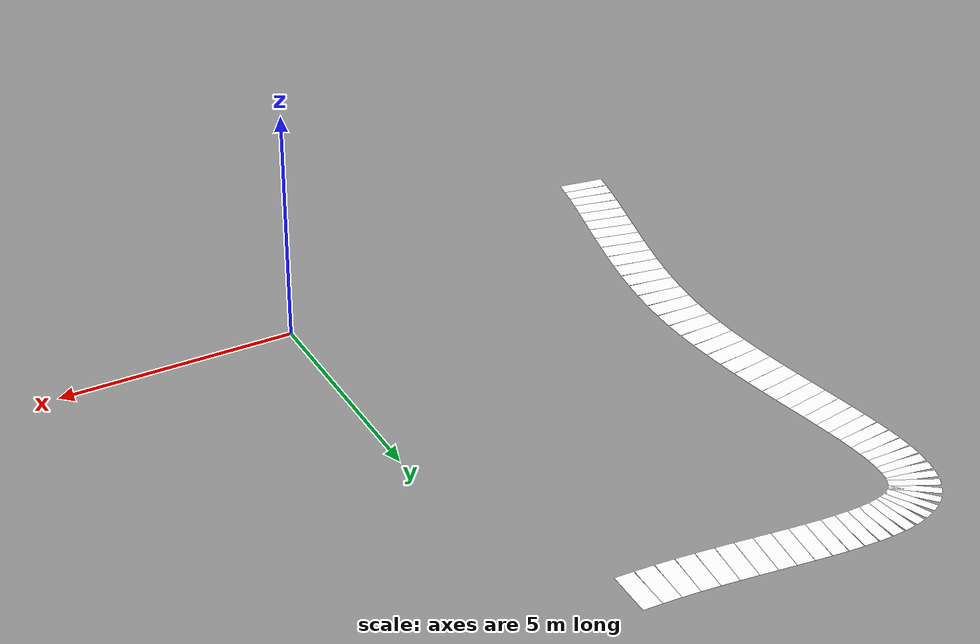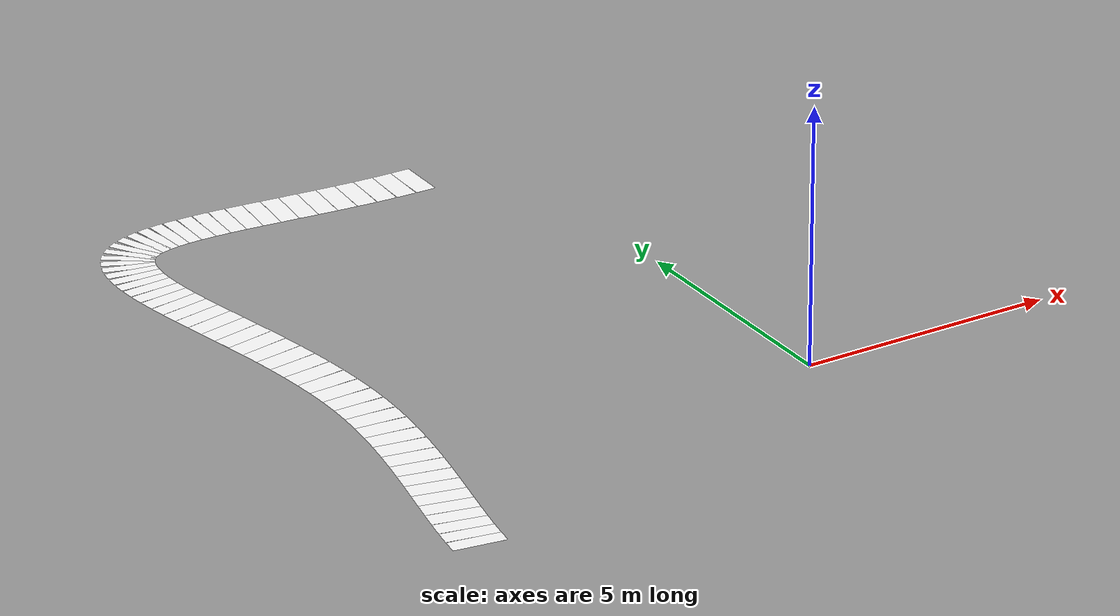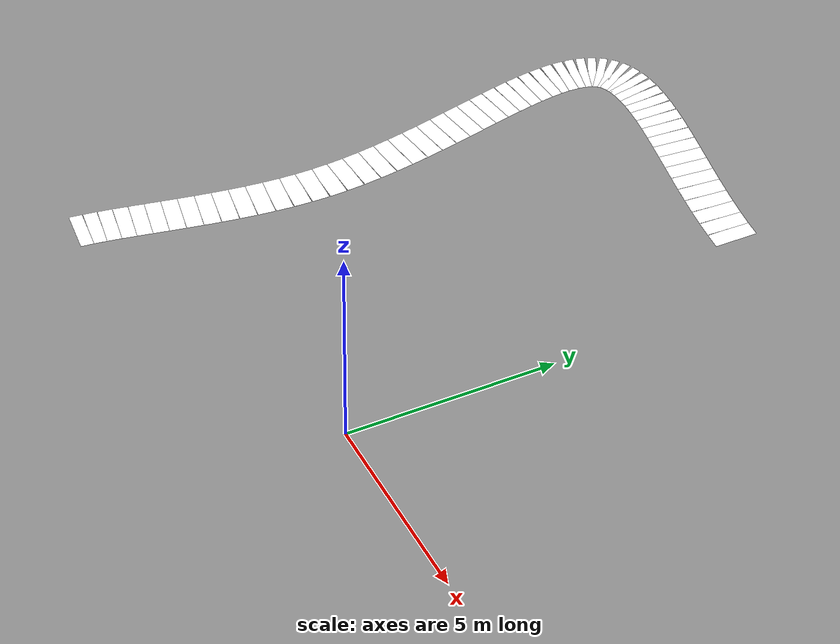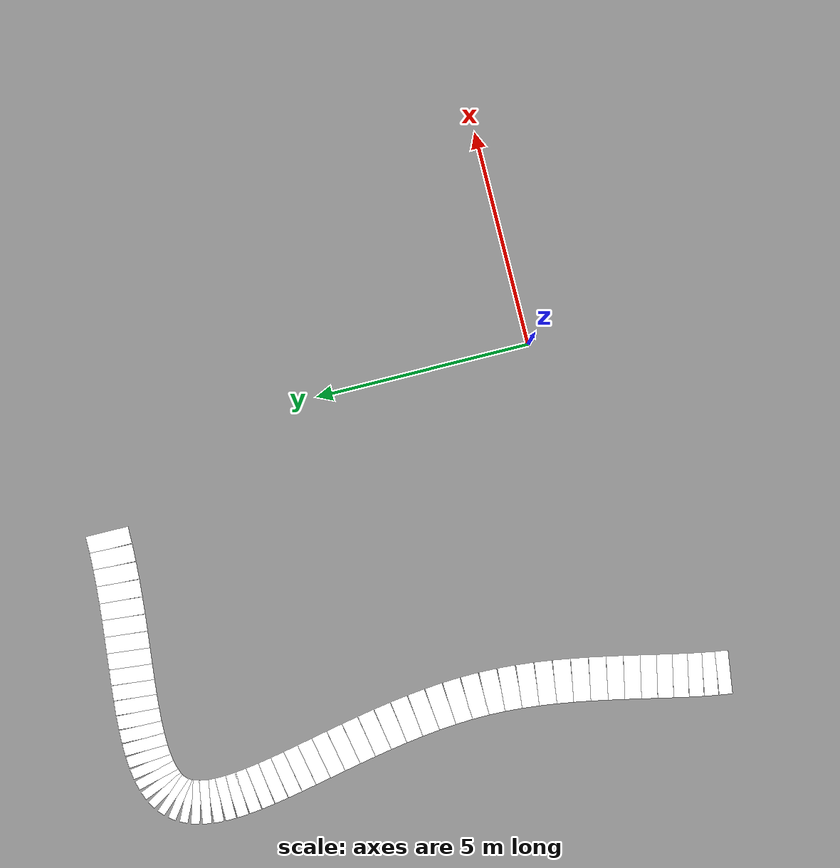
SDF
<sdf version="1.6">
 <model name="road_model">
  <model name="road_section_95">
   <static>1</static>
   <link name="road_link">
    <visual name="road_visual">
     <geometry><box><size>0.306032 1 0.0001</size></box></geometry>
     <material>
      <ambient>0.8 0.8 0.8 1</ambient>
      <diffuse>1 1 1 1</diffuse>
      <specular>0 0 0 1</specular>
      <pbr>
       <metal>
        <albedo_map>model://road_material/materials/textures/road_texture.jpg</albedo_map>
        <metalness>0</metalness>
        <roughness>0.8</roughness>
       </metal>
      </pbr>
     </material>
    </visual>
    <collision name="road_collision"><geometry><box><size>0.306032 1 0.0001</size></box></geometry></collision>
   </link>
   <pose>-8.37114 -2.49006 0 0 -0 1.42886</pose>
  </model>
  <model name="road_section_96">
   <static>1</static>
   <link name="road_link">
    <visual name="road_visual">
     <geometry><box><size>0.321907 1 0.0001</size></box></geometry>
     <material>
      <ambient>0.8 0.8 0.8 1</ambient>
      <diffuse>1 1 1 1</diffuse>
      <specular>0 0 0 1</specular>
      <pbr>
       <metal>
        <albedo_map>model://road_material/materials/textures/road_texture.jpg</albedo_map>
        <metalness>0</metalness>
        <roughness>0.8</roughness>
       </metal>
      </pbr>
     </material>
    </visual>
    <collision name="road_collision"><geometry><box><size>0.321907 1 0.0001</size></box></geometry></collision>
   </link>
   <pose>-8.32211 -2.17998 0 0 -0 1.39988</pose>
  </model>
  <model name="road_section_97">
   <static>1</static>
   <link name="road_link">
    <visual name="road_visual">
     <geometry><box><size>0.336643 1 0.0001</size></box></geometry>
     <material>
      <ambient>0.8 0.8 0.8 1</ambient>
      <diffuse>1 1 1 1</diffuse>
      <specular>0 0 0 1</specular>
      <pbr>
       <metal>
        <albedo_map>model://road_material/materials/textures/road_texture.jpg</albedo_map>
        <metalness>0</metalness>
        <roughness>0.8</roughness>
       </metal>
      </pbr>
     </material>
    </visual>
    <collision name="road_collision"><geometry><box><size>0.336643 1 0.0001</size></box></geometry></collision>
   </link>
   <pose>-8.26269 -1.85613 0 0 -0 1.37921</pose>
  </model>
  <model name="road_section_98">
   <static>1</static>
   <link name="road_link">
    <visual name="road_visual">
     <geometry><box><size>0.3501 1 0.0001</size></box></geometry>
     <material>
      <ambient>0.8 0.8 0.8 1</ambient>
      <diffuse>1 1 1 1</diffuse>
      <specular>0 0 0 1</specular>
      <pbr>
       <metal>
        <albedo_map>model://road_material/materials/textures/road_texture.jpg</albedo_map>
        <metalness>0</metalness>
        <roughness>0.8</roughness>
       </metal>
      </pbr>
     </material>
    </visual>
    <collision name="road_collision"><geometry><box><size>0.3501 1 0.0001</size></box></geometry></collision>
   </link>
   <pose>-8.19496 -1.51951 0 0 -0 1.36557</pose>
  </model>
  <model name="road_section_99">
   <static>1</static>
   <link name="road_link">
    <visual name="road_visual">
     <geometry><box><size>0.362194 1 0.0001</size></box></geometry>
     <material>
      <ambient>0.8 0.8 0.8 1</ambient>
      <diffuse>1 1 1 1</diffuse>
      <specular>0 0 0 1</specular>
      <pbr>
       <metal>
        <albedo_map>model://road_material/materials/textures/road_texture.jpg</albedo_map>
        <metalness>0</metalness>
        <roughness>0.8</roughness>
       </metal>
      </pbr>
     </material>
    </visual>
    <collision name="road_collision"><geometry><box><size>0.362194 1 0.0001</size></box></geometry></collision>
   </link>
   <pose>-8.12105 -1.17112 0 0 -0 1.35803</pose>
  </model>
  <model name="road_section_100">
   <static>1</static>
   <link name="road_link">
    <visual name="road_visual">
     <geometry><box><size>0.372879 1 0.0001</size></box></geometry>
     <material>
      <ambient>0.8 0.8 0.8 1</ambient>
      <diffuse>1 1 1 1</diffuse>
      <specular>0 0 0 1</specular>
      <pbr>
       <metal>
        <albedo_map>model://road_material/materials/textures/road_texture.jpg</albedo_map>
        <metalness>0</metalness>
        <roughness>0.8</roughness>
       </metal>
      </pbr>
     </material>
    </visual>
    <collision name="road_collision"><geometry><box><size>0.372879 1 0.0001</size></box></geometry></collision>
   </link>
   <pose>-8.04305 -0.811953 0 0 -0 1.35592</pose>
  </model>
  <model name="road_section_101">
   <static>1</static>
   <link name="road_link">
    <visual name="road_visual">
     <geometry><box><size>0.382144 1 0.0001</size></box></geometry>
     <material>
      <ambient>0.8 0.8 0.8 1</ambient>
      <diffuse>1 1 1 1</diffuse>
      <specular>0 0 0 1</specular>
      <pbr>
       <metal>
        <albedo_map>model://road_material/materials/textures/road_texture.jpg</albedo_map>
        <metalness>0</metalness>
        <roughness>0.8</roughness>
       </metal>
      </pbr>
     </material>
    </visual>
    <collision name="road_collision"><geometry><box><size>0.382144 1 0.0001</size></box></geometry></collision>
   </link>
   <pose>-7.96309 -0.443008 0 0 -0 1.35875</pose>
  </model>
  <model name="road_section_102">
   <static>1</static>
   <link name="road_link">
    <visual name="road_visual">
     <geometry><box><size>0.390003 1 0.0001</size></box></geometry>
     <material>
      <ambient>0.8 0.8 0.8 1</ambient>
      <diffuse>1 1 1 1</diffuse>
      <specular>0 0 0 1</specular>
      <pbr>
       <metal>
        <albedo_map>model://road_material/materials/textures/road_texture.jpg</albedo_map>
        <metalness>0</metalness>
        <roughness>0.8</roughness>
       </metal>
      </pbr>
     </material>
    </visual>
    <collision name="road_collision"><geometry><box><size>0.390003 1 0.0001</size></box></geometry></collision>
   </link>
   <pose>-7.88326 -0.065281 0 0 -0 1.36621</pose>
  </model>
  <model name="road_section_103">
   <static>1</static>
   <link name="road_link">
    <visual name="road_visual">
     <geometry><box><size>0.396496 1 0.0001</size></box></geometry>
     <material>
      <ambient>0.8 0.8 0.8 1</ambient>
      <diffuse>1 1 1 1</diffuse>
      <specular>0 0 0 1</specular>
      <pbr>
       <metal>
        <albedo_map>model://road_material/materials/textures/road_texture.jpg</albedo_map>
        <metalness>0</metalness>
        <roughness>0.8</roughness>
       </metal>
      </pbr>
     </material>
    </visual>
    <collision name="road_collision"><geometry><box><size>0.396496 1 0.0001</size></box></geometry></collision>
   </link>
   <pose>-7.80567 0.320233 0 0 -0 1.3781</pose>
  </model>
  <model name="road_section_104">
   <static>1</static>
   <link name="road_link">
    <visual name="road_visual">
     <geometry><box><size>0.401688 1 0.0001</size></box></geometry>
     <material>
      <ambient>0.8 0.8 0.8 1</ambient>
      <diffuse>1 1 1 1</diffuse>
      <specular>0 0 0 1</specular>
      <pbr>
       <metal>
        <albedo_map>model://road_material/materials/textures/road_texture.jpg</albedo_map>
        <metalness>0</metalness>
        <roughness>0.8</roughness>
       </metal>
      </pbr>
     </material>
    </visual>
    <collision name="road_collision"><geometry><box><size>0.401688 1 0.0001</size></box></geometry></collision>
   </link>
   <pose>-7.73245 0.712536 0 0 -0 1.39432</pose>
  </model>
  <model name="road_section_105">
   <static>1</static>
   <link name="road_link">
    <visual name="road_visual">
     <geometry><box><size>0.405667 1 0.0001</size></box></geometry>
     <material>
      <ambient>0.8 0.8 0.8 1</ambient>
      <diffuse>1 1 1 1</diffuse>
      <specular>0 0 0 1</specular>
      <pbr>
       <metal>
        <albedo_map>model://road_material/materials/textures/road_texture.jpg</albedo_map>
        <metalness>0</metalness>
        <roughness>0.8</roughness>
       </metal>
      </pbr>
     </material>
    </visual>
    <collision name="road_collision"><geometry><box><size>0.405667 1 0.0001</size></box></geometry></collision>
   </link>
   <pose>-7.66568 1.11063 0 0 -0 1.41485</pose>
  </model>
  <model name="road_section_106">
   <static>1</static>
   <link name="road_link">
    <visual name="road_visual">
     <geometry><box><size>0.408546 1 0.0001</size></box></geometry>
     <material>
      <ambient>0.8 0.8 0.8 1</ambient>
      <diffuse>1 1 1 1</diffuse>
      <specular>0 0 0 1</specular>
      <pbr>
       <metal>
        <albedo_map>model://road_material/materials/textures/road_texture.jpg</albedo_map>
        <metalness>0</metalness>
        <roughness>0.8</roughness>
       </metal>
      </pbr>
     </material>
    </visual>
    <collision name="road_collision"><geometry><box><size>0.408546 1 0.0001</size></box></geometry></collision>
   </link>
   <pose>-7.60749 1.51353 0 0 -0 1.43977</pose>
  </model>
  <model name="road_section_107">
   <static>1</static>
   <link name="road_link">
    <visual name="road_visual">
     <geometry><box><size>0.410464 1 0.0001</size></box></geometry>
     <material>
      <ambient>0.8 0.8 0.8 1</ambient>
      <diffuse>1 1 1 1</diffuse>
      <specular>0 0 0 1</specular>
      <pbr>
       <metal>
        <albedo_map>model://road_material/materials/textures/road_texture.jpg</albedo_map>
        <metalness>0</metalness>
        <roughness>0.8</roughness>
       </metal>
      </pbr>
     </material>
    </visual>
    <collision name="road_collision"><geometry><box><size>0.410464 1 0.0001</size></box></geometry></collision>
   </link>
   <pose>-7.55998 1.92022 0 0 -0 1.46917</pose>
  </model>
  <model name="road_section_108">
   <static>1</static>
   <link name="road_link">
    <visual name="road_visual">
     <geometry><box><size>0.411592 1 0.0001</size></box></geometry>
     <material>
      <ambient>0.8 0.8 0.8 1</ambient>
      <diffuse>1 1 1 1</diffuse>
      <specular>0 0 0 1</specular>
      <pbr>
       <metal>
        <albedo_map>model://road_material/materials/textures/road_texture.jpg</albedo_map>
        <metalness>0</metalness>
        <roughness>0.8</roughness>
       </metal>
      </pbr>
     </material>
    </visual>
    <collision name="road_collision"><geometry><box><size>0.411592 1 0.0001</size></box></geometry></collision>
   </link>
   <pose>-7.52526 2.32972 0 0 -0 1.50321</pose>
  </model>
  <model name="road_section_109">
   <static>1</static>
   <link name="road_link">
    <visual name="road_visual">
     <geometry><box><size>0.412133 1 0.0001</size></box></geometry>
     <material>
      <ambient>0.8 0.8 0.8 1</ambient>
      <diffuse>1 1 1 1</diffuse>
      <specular>0 0 0 1</specular>
      <pbr>
       <metal>
        <albedo_map>model://road_material/materials/textures/road_texture.jpg</albedo_map>
        <metalness>0</metalness>
        <roughness>0.8</roughness>
       </metal>
      </pbr>
     </material>
    </visual>
    <collision name="road_collision"><geometry><box><size>0.412133 1 0.0001</size></box></geometry></collision>
   </link>
   <pose>-7.50544 2.74103 0 0 -0 1.54205</pose>
  </model>
  <model name="road_section_110">
   <static>1</static>
   <link name="road_link">
    <visual name="road_visual">
     <geometry><box><size>0.412291 1 0.0001</size></box></geometry>
     <material>
      <ambient>0.8 0.8 0.8 1</ambient>
      <diffuse>1 1 1 1</diffuse>
      <specular>0 0 0 1</specular>
      <pbr>
       <metal>
        <albedo_map>model://road_material/materials/textures/road_texture.jpg</albedo_map>
        <metalness>0</metalness>
        <roughness>0.8</roughness>
       </metal>
      </pbr>
     </material>
    </visual>
    <collision name="road_collision"><geometry><box><size>0.412291 1 0.0001</size></box></geometry></collision>
   </link>
   <pose>-7.50216 3.15314 0 0 -0 1.5836</pose>
  </model>
  <model name="road_section_111">
   <static>1</static>
   <link name="road_link">
    <visual name="road_visual">
     <geometry><box><size>0.412015 1 0.0001</size></box></geometry>
     <material>
      <ambient>0.8 0.8 0.8 1</ambient>
      <diffuse>1 1 1 1</diffuse>
      <specular>0 0 0 1</specular>
      <pbr>
       <metal>
        <albedo_map>model://road_material/materials/textures/road_texture.jpg</albedo_map>
        <metalness>0</metalness>
        <roughness>0.8</roughness>
       </metal>
      </pbr>
     </material>
    </visual>
    <collision name="road_collision"><geometry><box><size>0.412015 1 0.0001</size></box></geometry></collision>
   </link>
   <pose>-7.51525 3.56501 0 0 -0 1.62155</pose>
  </model>
  <model name="road_section_112">
   <static>1</static>
   <link name="road_link">
    <visual name="road_visual">
     <geometry><box><size>0.411089 1 0.0001</size></box></geometry>
     <material>
      <ambient>0.8 0.8 0.8 1</ambient>
      <diffuse>1 1 1 1</diffuse>
      <specular>0 0 0 1</specular>
      <pbr>
       <metal>
        <albedo_map>model://road_material/materials/textures/road_texture.jpg</albedo_map>
        <metalness>0</metalness>
        <roughness>0.8</roughness>
       </metal>
      </pbr>
     </material>
    </visual>
    <collision name="road_collision"><geometry><box><size>0.411089 1 0.0001</size></box></geometry></collision>
   </link>
   <pose>-7.54298 3.97557 0 0 -0 1.65494</pose>
  </model>
  <model name="road_section_113">
   <static>1</static>
   <link name="road_link">
    <visual name="road_visual">
     <geometry><box><size>0.409325 1 0.0001</size></box></geometry>
     <material>
      <ambient>0.8 0.8 0.8 1</ambient>
      <diffuse>1 1 1 1</diffuse>
      <specular>0 0 0 1</specular>
      <pbr>
       <metal>
        <albedo_map>model://road_material/materials/textures/road_texture.jpg</albedo_map>
        <metalness>0</metalness>
        <roughness>0.8</roughness>
       </metal>
      </pbr>
     </material>
    </visual>
    <collision name="road_collision"><geometry><box><size>0.409325 1 0.0001</size></box></geometry></collision>
   </link>
   <pose>-7.58336 4.38374 0 0 -0 1.68396</pose>
  </model>
  <model name="road_section_114">
   <static>1</static>
   <link name="road_link">
    <visual name="road_visual">
     <geometry><box><size>0.406566 1 0.0001</size></box></geometry>
     <material>
      <ambient>0.8 0.8 0.8 1</ambient>
      <diffuse>1 1 1 1</diffuse>
      <specular>0 0 0 1</specular>
      <pbr>
       <metal>
        <albedo_map>model://road_material/materials/textures/road_texture.jpg</albedo_map>
        <metalness>0</metalness>
        <roughness>0.8</roughness>
       </metal>
      </pbr>
     </material>
    </visual>
    <collision name="road_collision"><geometry><box><size>0.406566 1 0.0001</size></box></geometry></collision>
   </link>
   <pose>-7.63443 4.78845 0 0 -0 1.70877</pose>
  </model>
  <model name="road_section_115">
   <static>1</static>
   <link name="road_link">
    <visual name="road_visual">
     <geometry><box><size>0.40268 1 0.0001</size></box></geometry>
     <material>
      <ambient>0.8 0.8 0.8 1</ambient>
      <diffuse>1 1 1 1</diffuse>
      <specular>0 0 0 1</specular>
      <pbr>
       <metal>
        <albedo_map>model://road_material/materials/textures/road_texture.jpg</albedo_map>
        <metalness>0</metalness>
        <roughness>0.8</roughness>
       </metal>
      </pbr>
     </material>
    </visual>
    <collision name="road_collision"><geometry><box><size>0.40268 1 0.0001</size></box></geometry></collision>
   </link>
   <pose>-7.69421 5.18861 0 0 -0 1.7295</pose>
  </model>
  <model name="road_section_116">
   <static>1</static>
   <link name="road_link">
    <visual name="road_visual">
     <geometry><box><size>0.397562 1 0.0001</size></box></geometry>
     <material>
      <ambient>0.8 0.8 0.8 1</ambient>
      <diffuse>1 1 1 1</diffuse>
      <specular>0 0 0 1</specular>
      <pbr>
       <metal>
        <albedo_map>model://road_material/materials/textures/road_texture.jpg</albedo_map>
        <metalness>0</metalness>
        <roughness>0.8</roughness>
       </metal>
      </pbr>
     </material>
    </visual>
    <collision name="road_collision"><geometry><box><size>0.397562 1 0.0001</size></box></geometry></collision>
   </link>
   <pose>-7.76072 5.58315 0 0 -0 1.74623</pose>
  </model>
  <model name="road_section_117">
   <static>1</static>
   <link name="road_link">
    <visual name="road_visual">
     <geometry><box><size>0.391126 1 0.0001</size></box></geometry>
     <material>
      <ambient>0.8 0.8 0.8 1</ambient>
      <diffuse>1 1 1 1</diffuse>
      <specular>0 0 0 1</specular>
      <pbr>
       <metal>
        <albedo_map>model://road_material/materials/textures/road_texture.jpg</albedo_map>
        <metalness>0</metalness>
        <roughness>0.8</roughness>
       </metal>
      </pbr>
     </material>
    </visual>
    <collision name="road_collision"><geometry><box><size>0.391126 1 0.0001</size></box></geometry></collision>
   </link>
   <pose>-7.832 5.97099 0 0 -0 1.75895</pose>
  </model>
  <model name="road_section_118">
   <static>1</static>
   <link name="road_link">
    <visual name="road_visual">
     <geometry><box><size>0.38331 1 0.0001</size></box></geometry>
     <material>
      <ambient>0.8 0.8 0.8 1</ambient>
      <diffuse>1 1 1 1</diffuse>
      <specular>0 0 0 1</specular>
      <pbr>
       <metal>
        <albedo_map>model://road_material/materials/textures/road_texture.jpg</albedo_map>
        <metalness>0</metalness>
        <roughness>0.8</roughness>
       </metal>
      </pbr>
     </material>
    </visual>
    <collision name="road_collision"><geometry><box><size>0.38331 1 0.0001</size></box></geometry></collision>
   </link>
   <pose>-7.90606 6.35105 0 0 -0 1.76762</pose>
  </model>
  <model name="road_section_119">
   <static>1</static>
   <link name="road_link">
    <visual name="road_visual">
     <geometry><box><size>0.374068 1 0.0001</size></box></geometry>
     <material>
      <ambient>0.8 0.8 0.8 1</ambient>
      <diffuse>1 1 1 1</diffuse>
      <specular>0 0 0 1</specular>
      <pbr>
       <metal>
        <albedo_map>model://road_material/materials/textures/road_texture.jpg</albedo_map>
        <metalness>0</metalness>
        <roughness>0.8</roughness>
       </metal>
      </pbr>
     </material>
    </visual>
    <collision name="road_collision"><geometry><box><size>0.374068 1 0.0001</size></box></geometry></collision>
   </link>
   <pose>-7.98092 6.72227 0 0 -0 1.77206</pose>
  </model>
  <model name="road_section_120">
   <static>1</static>
   <link name="road_link">
    <visual name="road_visual">
     <geometry><box><size>0.363381 1 0.0001</size></box></geometry>
     <material>
      <ambient>0.8 0.8 0.8 1</ambient>
      <diffuse>1 1 1 1</diffuse>
      <specular>0 0 0 1</specular>
      <pbr>
       <metal>
        <albedo_map>model://road_material/materials/textures/road_texture.jpg</albedo_map>
        <metalness>0</metalness>
        <roughness>0.8</roughness>
       </metal>
      </pbr>
     </material>
    </visual>
    <collision name="road_collision"><geometry><box><size>0.363381 1 0.0001</size></box></geometry></collision>
   </link>
   <pose>-8.05463 7.08355 0 0 -0 1.77202</pose>
  </model>
  <model name="road_section_121">
   <static>1</static>
   <link name="road_link">
    <visual name="road_visual">
     <geometry><box><size>0.351247 1 0.0001</size></box></geometry>
     <material>
      <ambient>0.8 0.8 0.8 1</ambient>
      <diffuse>1 1 1 1</diffuse>
      <specular>0 0 0 1</specular>
      <pbr>
       <metal>
        <albedo_map>model://road_material/materials/textures/road_texture.jpg</albedo_map>
        <metalness>0</metalness>
        <roughness>0.8</roughness>
       </metal>
      </pbr>
     </material>
    </visual>
    <collision name="road_collision"><geometry><box><size>0.351247 1 0.0001</size></box></geometry></collision>
   </link>
   <pose>-8.12519 7.43383 0 0 -0 1.76707</pose>
  </model>
  <model name="road_section_122">
   <static>1</static>
   <link name="road_link">
    <visual name="road_visual">
     <geometry><box><size>0.337694 1 0.0001</size></box></geometry>
     <material>
      <ambient>0.8 0.8 0.8 1</ambient>
      <diffuse>1 1 1 1</diffuse>
      <specular>0 0 0 1</specular>
      <pbr>
       <metal>
        <albedo_map>model://road_material/materials/textures/road_texture.jpg</albedo_map>
        <metalness>0</metalness>
        <roughness>0.8</roughness>
       </metal>
      </pbr>
     </material>
    </visual>
    <collision name="road_collision"><geometry><box><size>0.337694 1 0.0001</size></box></geometry></collision>
   </link>
   <pose>-8.19064 7.77202 0 0 -0 1.75664</pose>
  </model>
  <model name="road_section_123">
   <static>1</static>
   <link name="road_link">
    <visual name="road_visual">
     <geometry><box><size>0.322782 1 0.0001</size></box></geometry>
     <material>
      <ambient>0.8 0.8 0.8 1</ambient>
      <diffuse>1 1 1 1</diffuse>
      <specular>0 0 0 1</specular>
      <pbr>
       <metal>
        <albedo_map>model://road_material/materials/textures/road_texture.jpg</albedo_map>
        <metalness>0</metalness>
        <roughness>0.8</roughness>
       </metal>
      </pbr>
     </material>
    </visual>
    <collision name="road_collision"><geometry><box><size>0.322782 1 0.0001</size></box></geometry></collision>
   </link>
   <pose>-8.249 8.09705 0 0 -0 1.73989</pose>
  </model>
  <model name="road_section_124">
   <static>1</static>
   <link name="road_link">
    <visual name="road_visual">
     <geometry><box><size>0.306613 1 0.0001</size></box></geometry>
     <material>
      <ambient>0.8 0.8 0.8 1</ambient>
      <diffuse>1 1 1 1</diffuse>
      <specular>0 0 0 1</specular>
      <pbr>
       <metal>
        <albedo_map>model://road_material/materials/textures/road_texture.jpg</albedo_map>
        <metalness>0</metalness>
        <roughness>0.8</roughness>
       </metal>
      </pbr>
     </material>
    </visual>
    <collision name="road_collision"><geometry><box><size>0.306613 1 0.0001</size></box></geometry></collision>
   </link>
   <pose>-8.2983 8.40784 0 0 -0 1.71568</pose>
  </model>
  <model name="road_section_125">
   <static>1</static>
   <link name="road_link">
    <visual name="road_visual">
     <geometry><box><size>0.289347 1 0.0001</size></box></geometry>
     <material>
      <ambient>0.8 0.8 0.8 1</ambient>
      <diffuse>1 1 1 1</diffuse>
      <specular>0 0 0 1</specular>
      <pbr>
       <metal>
        <albedo_map>model://road_material/materials/textures/road_texture.jpg</albedo_map>
        <metalness>0</metalness>
        <roughness>0.8</roughness>
       </metal>
      </pbr>
     </material>
    </visual>
    <collision name="road_collision"><geometry><box><size>0.289347 1 0.0001</size></box></geometry></collision>
   </link>
   <pose>-8.33655 8.70331 0 0 -0 1.68246</pose>
  </model>
  <model name="road_section_126">
   <static>1</static>
   <link name="road_link">
    <visual name="road_visual">
     <geometry><box><size>0.271227 1 0.0001</size></box></geometry>
     <material>
      <ambient>0.8 0.8 0.8 1</ambient>
      <diffuse>1 1 1 1</diffuse>
      <specular>0 0 0 1</specular>
      <pbr>
       <metal>
        <albedo_map>model://road_material/materials/textures/road_texture.jpg</albedo_map>
        <metalness>0</metalness>
        <roughness>0.8</roughness>
       </metal>
      </pbr>
     </material>
    </visual>
    <collision name="road_collision"><geometry><box><size>0.271227 1 0.0001</size></box></geometry></collision>
   </link>
   <pose>-8.36179 8.98239 0 0 -0 1.6381</pose>
  </model>
  <model name="road_section_127">
   <static>1</static>
   <link name="road_link">
    <visual name="road_visual">
     <geometry><box><size>0.252613 1 0.0001</size></box></geometry>
     <material>
      <ambient>0.8 0.8 0.8 1</ambient>
      <diffuse>1 1 1 1</diffuse>
      <specular>0 0 0 1</specular>
      <pbr>
       <metal>
        <albedo_map>model://road_material/materials/textures/road_texture.jpg</albedo_map>
        <metalness>0</metalness>
        <roughness>0.8</roughness>
       </metal>
      </pbr>
     </material>
    </visual>
    <collision name="road_collision"><geometry><box><size>0.252613 1 0.0001</size></box></geometry></collision>
   </link>
   <pose>-8.37205 9.24399 0 0 -0 1.57976</pose>
  </model>
  <model name="road_section_128">
   <static>1</static>
   <link name="road_link">
    <visual name="road_visual">
     <geometry><box><size>0.234042 1 0.0001</size></box></geometry>
     <material>
      <ambient>0.8 0.8 0.8 1</ambient>
      <diffuse>1 1 1 1</diffuse>
      <specular>0 0 0 1</specular>
      <pbr>
       <metal>
        <albedo_map>model://road_material/materials/textures/road_texture.jpg</albedo_map>
        <metalness>0</metalness>
        <roughness>0.8</roughness>
       </metal>
      </pbr>
     </material>
    </visual>
    <collision name="road_collision"><geometry><box><size>0.234042 1 0.0001</size></box></geometry></collision>
   </link>
   <pose>-8.36533 9.48705 0 0 -0 1.50372</pose>
  </model>
  <model name="road_section_129">
   <static>1</static>
   <link name="road_link">
    <visual name="road_visual">
     <geometry><box><size>0.216303 1 0.0001</size></box></geometry>
     <material>
      <ambient>0.8 0.8 0.8 1</ambient>
      <diffuse>1 1 1 1</diffuse>
      <specular>0 0 0 1</specular>
      <pbr>
       <metal>
        <albedo_map>model://road_material/materials/textures/road_texture.jpg</albedo_map>
        <metalness>0</metalness>
        <roughness>0.8</roughness>
       </metal>
      </pbr>
     </material>
    </visual>
    <collision name="road_collision"><geometry><box><size>0.216303 1 0.0001</size></box></geometry></collision>
   </link>
   <pose>-8.33968 9.71049 0 0 -0 1.40539</pose>
  </model>
  <model name="road_section_130">
   <static>1</static>
   <link name="road_link">
    <visual name="road_visual">
     <geometry><box><size>0.200534 1 0.0001</size></box></geometry>
     <material>
      <ambient>0.8 0.8 0.8 1</ambient>
      <diffuse>1 1 1 1</diffuse>
      <specular>0 0 0 1</specular>
      <pbr>
       <metal>
        <albedo_map>model://road_material/materials/textures/road_texture.jpg</albedo_map>
        <metalness>0</metalness>
        <roughness>0.8</roughness>
       </metal>
      </pbr>
     </material>
    </visual>
    <collision name="road_collision"><geometry><box><size>0.200534 1 0.0001</size></box></geometry></collision>
   </link>
   <pose>-8.29312 9.91322 0 0 -0 1.2799</pose>
  </model>
  <model name="road_section_131">
   <static>1</static>
   <link name="road_link">
    <visual name="road_visual">
     <geometry><box><size>0.18829 1 0.0001</size></box></geometry>
     <material>
      <ambient>0.8 0.8 0.8 1</ambient>
      <diffuse>1 1 1 1</diffuse>
      <specular>0 0 0 1</specular>
      <pbr>
       <metal>
        <albedo_map>model://road_material/materials/textures/road_texture.jpg</albedo_map>
        <metalness>0</metalness>
        <roughness>0.8</roughness>
       </metal>
      </pbr>
     </material>
    </visual>
    <collision name="road_collision"><geometry><box><size>0.18829 1 0.0001</size></box></geometry></collision>
   </link>
   <pose>-8.22366 10.0942 0 0 -0 1.12379</pose>
  </model>
  <model name="road_section_132">
   <static>1</static>
   <link name="road_link">
    <visual name="road_visual">
     <geometry><box><size>0.181472 1 0.0001</size></box></geometry>
     <material>
      <ambient>0.8 0.8 0.8 1</ambient>
      <diffuse>1 1 1 1</diffuse>
      <specular>0 0 0 1</specular>
      <pbr>
       <metal>
        <albedo_map>model://road_material/materials/textures/road_texture.jpg</albedo_map>
        <metalness>0</metalness>
        <roughness>0.8</roughness>
       </metal>
      </pbr>
     </material>
    </visual>
    <collision name="road_collision"><geometry><box><size>0.181472 1 0.0001</size></box></geometry></collision>
   </link>
   <pose>-8.12934 10.2523 0 0 -0 0.938541</pose>
  </model>
  <model name="road_section_133">
   <static>1</static>
   <link name="road_link">
    <visual name="road_visual">
     <geometry><box><size>0.181949 1 0.0001</size></box></geometry>
     <material>
      <ambient>0.8 0.8 0.8 1</ambient>
      <diffuse>1 1 1 1</diffuse>
      <specular>0 0 0 1</specular>
      <pbr>
       <metal>
        <albedo_map>model://road_material/materials/textures/road_texture.jpg</albedo_map>
        <metalness>0</metalness>
        <roughness>0.8</roughness>
       </metal>
      </pbr>
     </material>
    </visual>
    <collision name="road_collision"><geometry><box><size>0.181949 1 0.0001</size></box></geometry></collision>
   </link>
   <pose>-8.00821 10.3864 0 0 -0 0.734571</pose>
  </model>
  <model name="road_section_134">
   <static>1</static>
   <link name="road_link">
    <visual name="road_visual">
     <geometry><box><size>0.190276 1 0.0001</size></box></geometry>
     <material>
      <ambient>0.8 0.8 0.8 1</ambient>
      <diffuse>1 1 1 1</diffuse>
      <specular>0 0 0 1</specular>
      <pbr>
       <metal>
        <albedo_map>model://road_material/materials/textures/road_texture.jpg</albedo_map>
        <metalness>0</metalness>
        <roughness>0.8</roughness>
       </metal>
      </pbr>
     </material>
    </visual>
    <collision name="road_collision"><geometry><box><size>0.190276 1 0.0001</size></box></geometry></collision>
   </link>
   <pose>-7.85908 10.4963 0 0 -0 0.53963</pose>
  </model>
  <model name="road_section_135">
   <static>1</static>
   <link name="road_link">
    <visual name="road_visual">
     <geometry><box><size>0.204417 1 0.0001</size></box></geometry>
     <material>
      <ambient>0.8 0.8 0.8 1</ambient>
      <diffuse>1 1 1 1</diffuse>
      <specular>0 0 0 1</specular>
      <pbr>
       <metal>
        <albedo_map>model://road_material/materials/textures/road_texture.jpg</albedo_map>
        <metalness>0</metalness>
        <roughness>0.8</roughness>
       </metal>
      </pbr>
     </material>
    </visual>
    <collision name="road_collision"><geometry><box><size>0.204417 1 0.0001</size></box></geometry></collision>
   </link>
   <pose>-7.68247 10.5829 0 0 -0 0.378041</pose>
  </model>
  <model name="road_section_136">
   <static>1</static>
   <link name="road_link">
    <visual name="road_visual">
     <geometry><box><size>0.222089 1 0.0001</size></box></geometry>
     <material>
      <ambient>0.8 0.8 0.8 1</ambient>
      <diffuse>1 1 1 1</diffuse>
      <specular>0 0 0 1</specular>
      <pbr>
       <metal>
        <albedo_map>model://road_material/materials/textures/road_texture.jpg</albedo_map>
        <metalness>0</metalness>
        <roughness>0.8</roughness>
       </metal>
      </pbr>
     </material>
    </visual>
    <collision name="road_collision"><geometry><box><size>0.222089 1 0.0001</size></box></geometry></collision>
   </link>
   <pose>-7.4799 10.6482 0 0 -0 0.250746</pose>
  </model>
  <model name="road_section_137">
   <static>1</static>
   <link name="road_link">
    <visual name="road_visual">
     <geometry><box><size>0.24153 1 0.0001</size></box></geometry>
     <material>
      <ambient>0.8 0.8 0.8 1</ambient>
      <diffuse>1 1 1 1</diffuse>
      <specular>0 0 0 1</specular>
      <pbr>
       <metal>
        <albedo_map>model://road_material/materials/textures/road_texture.jpg</albedo_map>
        <metalness>0</metalness>
        <roughness>0.8</roughness>
       </metal>
      </pbr>
     </material>
    </visual>
    <collision name="road_collision"><geometry><box><size>0.24153 1 0.0001</size></box></geometry></collision>
   </link>
   <pose>-7.25297 10.6941 0 0 -0 0.152684</pose>
  </model>
  <model name="road_section_138">
   <static>1</static>
   <link name="road_link">
    <visual name="road_visual">
     <geometry><box><size>0.261504 1 0.0001</size></box></geometry>
     <material>
      <ambient>0.8 0.8 0.8 1</ambient>
      <diffuse>1 1 1 1</diffuse>
      <specular>0 0 0 1</specular>
      <pbr>
       <metal>
        <albedo_map>model://road_material/materials/textures/road_texture.jpg</albedo_map>
        <metalness>0</metalness>
        <roughness>0.8</roughness>
       </metal>
      </pbr>
     </material>
    </visual>
    <collision name="road_collision"><geometry><box><size>0.261504 1 0.0001</size></box></geometry></collision>
   </link>
   <pose>-7.00325 10.7226 0 0 -0 0.077845</pose>
  </model>
  <model name="road_section_139">
   <static>1</static>
   <link name="road_link">
    <visual name="road_visual">
     <geometry><box><size>0.281182 1 0.0001</size></box></geometry>
     <material>
      <ambient>0.8 0.8 0.8 1</ambient>
      <diffuse>1 1 1 1</diffuse>
      <specular>0 0 0 1</specular>
      <pbr>
       <metal>
        <albedo_map>model://road_material/materials/textures/road_texture.jpg</albedo_map>
        <metalness>0</metalness>
        <roughness>0.8</roughness>
       </metal>
      </pbr>
     </material>
    </visual>
    <collision name="road_collision"><geometry><box><size>0.281182 1 0.0001</size></box></geometry></collision>
   </link>
   <pose>-6.73234 10.7358 0 0 -0 0.021023</pose>
  </model>
  <model name="road_section_140">
   <static>1</static>
   <link name="road_link">
    <visual name="road_visual">
     <geometry><box><size>0.300014 1 0.0001</size></box></geometry>
     <material>
      <ambient>0.8 0.8 0.8 1</ambient>
      <diffuse>1 1 1 1</diffuse>
      <specular>0 0 0 1</specular>
      <pbr>
       <metal>
        <albedo_map>model://road_material/materials/textures/road_texture.jpg</albedo_map>
        <metalness>0</metalness>
        <roughness>0.8</roughness>
       </metal>
      </pbr>
     </material>
    </visual>
    <collision name="road_collision"><geometry><box><size>0.300014 1 0.0001</size></box></geometry></collision>
   </link>
   <pose>-6.44181 10.7354 0 0 0 -0.021807</pose>
  </model>
  <model name="road_section_141">
   <static>1</static>
   <link name="road_link">
    <visual name="road_visual">
     <geometry><box><size>0.317638 1 0.0001</size></box></geometry>
     <material>
      <ambient>0.8 0.8 0.8 1</ambient>
      <diffuse>1 1 1 1</diffuse>
      <specular>0 0 0 1</specular>
      <pbr>
       <metal>
        <albedo_map>model://road_material/materials/textures/road_texture.jpg</albedo_map>
        <metalness>0</metalness>
        <roughness>0.8</roughness>
       </metal>
      </pbr>
     </material>
    </visual>
    <collision name="road_collision"><geometry><box><size>0.317638 1 0.0001</size></box></geometry></collision>
   </link>
   <pose>-6.13324 10.7237 0 0 0 -0.053614</pose>
  </model>
  <model name="road_section_142">
   <static>1</static>
   <link name="road_link">
    <visual name="road_visual">
     <geometry><box><size>0.333814 1 0.0001</size></box></geometry>
     <material>
      <ambient>0.8 0.8 0.8 1</ambient>
      <diffuse>1 1 1 1</diffuse>
      <specular>0 0 0 1</specular>
      <pbr>
       <metal>
        <albedo_map>model://road_material/materials/textures/road_texture.jpg</albedo_map>
        <metalness>0</metalness>
        <roughness>0.8</roughness>
       </metal>
      </pbr>
     </material>
    </visual>
    <collision name="road_collision"><geometry><box><size>0.333814 1 0.0001</size></box></geometry></collision>
   </link>
   <pose>-5.80824 10.7024 0 0 0 -0.07655</pose>
  </model>
  <model name="road_section_143">
   <static>1</static>
   <link name="road_link">
    <visual name="road_visual">
     <geometry><box><size>0.348385 1 0.0001</size></box></geometry>
     <material>
      <ambient>0.8 0.8 0.8 1</ambient>
      <diffuse>1 1 1 1</diffuse>
      <specular>0 0 0 1</specular>
      <pbr>
       <metal>
        <albedo_map>model://road_material/materials/textures/road_texture.jpg</albedo_map>
        <metalness>0</metalness>
        <roughness>0.8</roughness>
       </metal>
      </pbr>
     </material>
    </visual>
    <collision name="road_collision"><geometry><box><size>0.348385 1 0.0001</size></box></geometry></collision>
   </link>
   <pose>-5.46836 10.6736 0 0 0 -0.092163</pose>
  </model>
  <model name="road_section_144">
   <static>1</static>
   <link name="road_link">
    <visual name="road_visual">
     <geometry><box><size>0.361254 1 0.0001</size></box></geometry>
     <material>
      <ambient>0.8 0.8 0.8 1</ambient>
      <diffuse>1 1 1 1</diffuse>
      <specular>0 0 0 1</specular>
      <pbr>
       <metal>
        <albedo_map>model://road_material/materials/textures/road_texture.jpg</albedo_map>
        <metalness>0</metalness>
        <roughness>0.8</roughness>
       </metal>
      </pbr>
     </material>
    </visual>
    <collision name="road_collision"><geometry><box><size>0.361254 1 0.0001</size></box></geometry></collision>
   </link>
   <pose>-5.11521 10.6392 0 0 0 -0.101554</pose>
  </model>
  <model name="road_section_145">
   <static>1</static>
   <link name="road_link">
    <visual name="road_visual">
     <geometry><box><size>0.372364 1 0.0001</size></box></geometry>
     <material>
      <ambient>0.8 0.8 0.8 1</ambient>
      <diffuse>1 1 1 1</diffuse>
      <specular>0 0 0 1</specular>
      <pbr>
       <metal>
        <albedo_map>model://road_material/materials/textures/road_texture.jpg</albedo_map>
        <metalness>0</metalness>
        <roughness>0.8</roughness>
       </metal>
      </pbr>
     </material>
    </visual>
    <collision name="road_collision"><geometry><box><size>0.372364 1 0.0001</size></box></geometry></collision>
   </link>
   <pose>-4.75037 10.6013 0 0 0 -0.105501</pose>
  </model>
  <model name="road_section_146">
   <static>1</static>
   <link name="road_link">
    <visual name="road_visual">
     <geometry><box><size>0.381695 1 0.0001</size></box></geometry>
     <material>
      <ambient>0.8 0.8 0.8 1</ambient>
      <diffuse>1 1 1 1</diffuse>
      <specular>0 0 0 1</specular>
      <pbr>
       <metal>
        <albedo_map>model://road_material/materials/textures/road_texture.jpg</albedo_map>
        <metalness>0</metalness>
        <roughness>0.8</roughness>
       </metal>
      </pbr>
     </material>
    </visual>
    <collision name="road_collision"><geometry><box><size>0.381695 1 0.0001</size></box></geometry></collision>
   </link>
   <pose>-4.37542 10.5618 0 0 0 -0.104534</pose>
  </model>
  <model name="road_section_147">
   <static>1</static>
   <link name="road_link">
    <visual name="road_visual">
     <geometry><box><size>0.389249 1 0.0001</size></box></geometry>
     <material>
      <ambient>0.8 0.8 0.8 1</ambient>
      <diffuse>1 1 1 1</diffuse>
      <specular>0 0 0 1</specular>
      <pbr>
       <metal>
        <albedo_map>model://road_material/materials/textures/road_texture.jpg</albedo_map>
        <metalness>0</metalness>
        <roughness>0.8</roughness>
       </metal>
      </pbr>
     </material>
    </visual>
    <collision name="road_collision"><geometry><box><size>0.389249 1 0.0001</size></box></geometry></collision>
   </link>
   <pose>-3.99194 10.5227 0 0 0 -0.098992</pose>
  </model>
  <model name="road_section_148">
   <static>1</static>
   <link name="road_link">
    <visual name="road_visual">
     <geometry><box><size>0.395058 1 0.0001</size></box></geometry>
     <material>
      <ambient>0.8 0.8 0.8 1</ambient>
      <diffuse>1 1 1 1</diffuse>
      <specular>0 0 0 1</specular>
      <pbr>
       <metal>
        <albedo_map>model://road_material/materials/textures/road_texture.jpg</albedo_map>
        <metalness>0</metalness>
        <roughness>0.8</roughness>
       </metal>
      </pbr>
     </material>
    </visual>
    <collision name="road_collision"><geometry><box><size>0.395058 1 0.0001</size></box></geometry></collision>
   </link>
   <pose>-3.60152 10.4859 0 0 0 -0.089065</pose>
  </model>
  <model name="road_section_149">
   <static>1</static>
   <link name="road_link">
    <visual name="road_visual">
     <geometry><box><size>0.399172 1 0.0001</size></box></geometry>
     <material>
      <ambient>0.8 0.8 0.8 1</ambient>
      <diffuse>1 1 1 1</diffuse>
      <specular>0 0 0 1</specular>
      <pbr>
       <metal>
        <albedo_map>model://road_material/materials/textures/road_texture.jpg</albedo_map>
        <metalness>0</metalness>
        <roughness>0.8</roughness>
       </metal>
      </pbr>
     </material>
    </visual>
    <collision name="road_collision"><geometry><box><size>0.399172 1 0.0001</size></box></geometry></collision>
   </link>
   <pose>-3.20575 10.4534 0 0 0 -0.074814</pose>
  </model>
  <model name="road_section_150">
   <static>1</static>
   <link name="road_link">
    <visual name="road_visual">
     <geometry><box><size>0.401669 1 0.0001</size></box></geometry>
     <material>
      <ambient>0.8 0.8 0.8 1</ambient>
      <diffuse>1 1 1 1</diffuse>
      <specular>0 0 0 1</specular>
      <pbr>
       <metal>
        <albedo_map>model://road_material/materials/textures/road_texture.jpg</albedo_map>
        <metalness>0</metalness>
        <roughness>0.8</roughness>
       </metal>
      </pbr>
     </material>
    </visual>
    <collision name="road_collision"><geometry><box><size>0.401669 1 0.0001</size></box></geometry></collision>
   </link>
   <pose>-2.8062 10.4272 0 0 0 -0.056194</pose>
  </model>
  <model name="road_section_151">
   <static>1</static>
   <link name="road_link">
    <visual name="road_visual">
     <geometry><box><size>0.402651 1 0.0001</size></box></geometry>
     <material>
      <ambient>0.8 0.8 0.8 1</ambient>
      <diffuse>1 1 1 1</diffuse>
      <specular>0 0 0 1</specular>
      <pbr>
       <metal>
        <albedo_map>model://road_material/materials/textures/road_texture.jpg</albedo_map>
        <metalness>0</metalness>
        <roughness>0.8</roughness>
       </metal>
      </pbr>
     </material>
    </visual>
    <collision name="road_collision"><geometry><box><size>0.402651 1 0.0001</size></box></geometry></collision>
   </link>
   <pose>-2.40447 10.4092 0 0 0 -0.033063</pose>
  </model>
  <model name="road_section_152">
   <static>1</static>
   <link name="road_link">
    <visual name="road_visual">
     <geometry><box><size>0.402258 1 0.0001</size></box></geometry>
     <material>
      <ambient>0.8 0.8 0.8 1</ambient>
      <diffuse>1 1 1 1</diffuse>
      <specular>0 0 0 1</specular>
      <pbr>
       <metal>
        <albedo_map>model://road_material/materials/textures/road_texture.jpg</albedo_map>
        <metalness>0</metalness>
        <roughness>0.8</roughness>
       </metal>
      </pbr>
     </material>
    </visual>
    <collision name="road_collision"><geometry><box><size>0.402258 1 0.0001</size></box></geometry></collision>
   </link>
   <pose>-2.00213 10.4015 0 0 0 -0.005379</pose>
  </model>
 </model>
</sdf>
